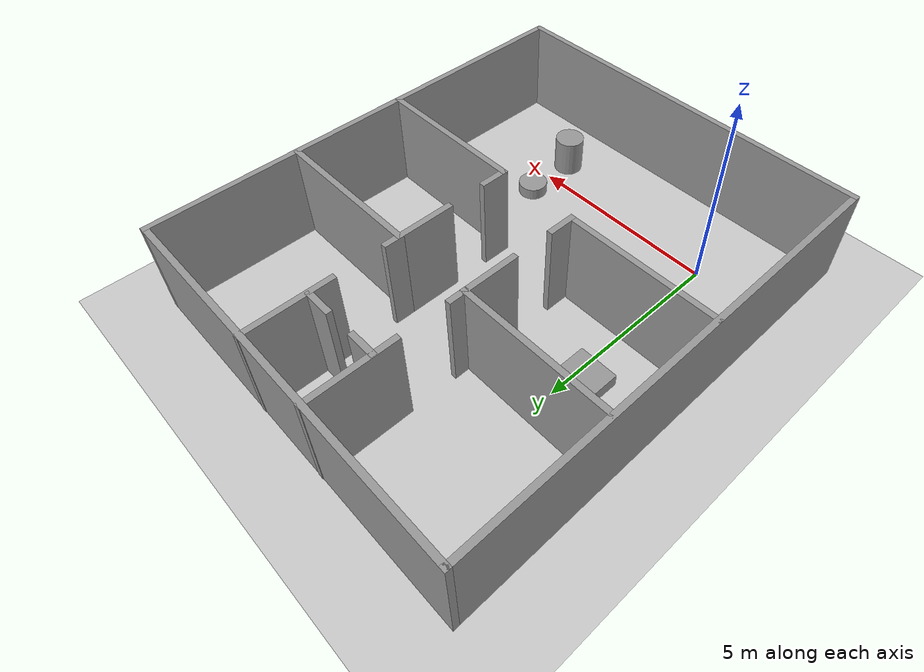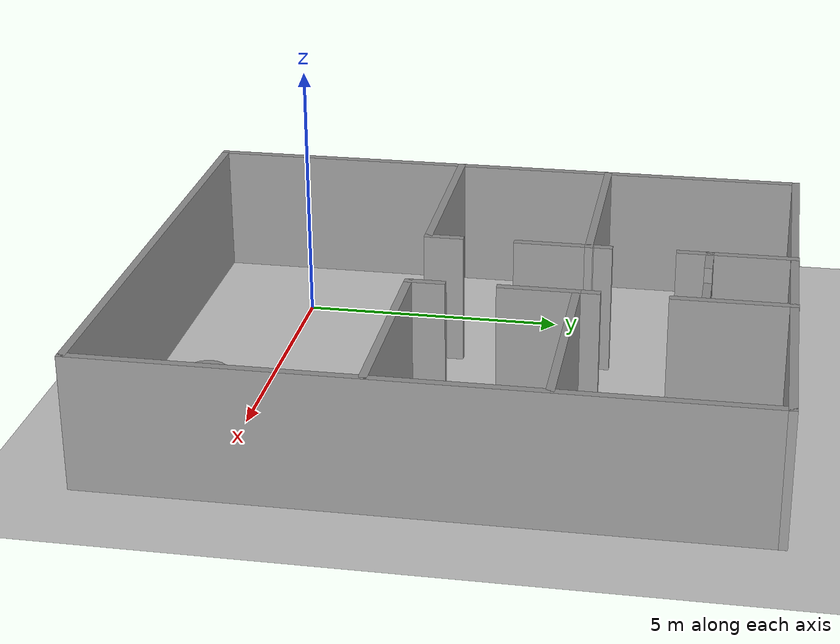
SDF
<sdf version="1.7">
 <world name="default">
  <light name="sun" type="directional">
   <pose>0 0 10 0 -0 0</pose>
   <diffuse>0.8 0.8 0.8 1</diffuse>
   <specular>0.2 0.2 0.2 1</specular>
   <attenuation>
    <range>1000</range>
    <constant>0.9</constant>
    <linear>0.01</linear>
    <quadratic>0.001</quadratic>
   </attenuation>
   <direction>-0.5 0.1 -0.9</direction>
   <spot><inner_angle>0</inner_angle><outer_angle>0</outer_angle><falloff>0</falloff></spot>
  </light>
  <model name="ground_plane">
   <static>1</static>
   <link name="link">
    <collision name="collision">
     <geometry><plane><normal>0 0 1</normal><size>100 100</size></plane></geometry>
     <surface><friction><ode><mu>100</mu><mu2>50</mu2></ode></friction></surface>
    </collision>
    <visual name="visual">
     <cast_shadows>0</cast_shadows>
     <geometry><plane><normal>0 0 1</normal><size>100 100</size></plane></geometry>
     <material>
      <script><uri>file://media/materials/scripts/gazebo.material</uri><name>Gazebo/Grey</name></script>
     </material>
    </visual>
   </link>
  </model>
  <gravity>0 0 -9.8</gravity>
  <magnetic_field>6e-06 2.3e-05 -4.2e-05</magnetic_field>
  <atmosphere type="adiabatic"/>
  <physics type="ode">
   <max_step_size>0.001</max_step_size>
   <real_time_factor>1</real_time_factor>
   <real_time_update_rate>1000</real_time_update_rate>
  </physics>
  <scene><ambient>0.4 0.4 0.4 1</ambient><background>0.7 0.7 0.7 1</background><shadows>1</shadows></scene>
  <audio><device>default</device></audio>
  <spherical_coordinates>
   <surface_model>EARTH_WGS84</surface_model>
   <latitude_deg>0</latitude_deg>
   <longitude_deg>0</longitude_deg>
   <elevation>0</elevation>
   <heading_deg>0</heading_deg>
  </spherical_coordinates>
  <model name="Untitled">
   <pose>4.12571 3.66792 0 0 -0 0.003554</pose>
   <link name="Wall_0">
    <collision name="Wall_0_Collision">
     <geometry><box><size>10 0.15 2.5</size></box></geometry>
     <pose>0 0 1.25 0 -0 0</pose>
    </collision>
    <visual name="Wall_0_Visual">
     <pose>0 0 1.25 0 -0 0</pose>
     <geometry><box><size>10 0.15 2.5</size></box></geometry>
     <material>
      <script><uri>file://media/materials/scripts/gazebo.material</uri><name>Gazebo/Grey</name></script>
      <ambient>1 1 1 1</ambient>
     </material>
     <meta><layer>0</layer></meta>
    </visual>
    <pose>-1.3075 -5.93156 0 0 -0 3.3e-05</pose>
   </link>
   <link name="Wall_14">
    <collision name="Wall_14_Collision">
     <geometry><box><size>4 0.15 2.5</size></box></geometry>
     <pose>0 0 1.25 0 -0 0</pose>
    </collision>
    <visual name="Wall_14_Visual">
     <pose>0 0 1.25 0 -0 0</pose>
     <geometry><box><size>4 0.15 2.5</size></box></geometry>
     <material>
      <script><uri>file://media/materials/scripts/gazebo.material</uri><name>Gazebo/Grey</name></script>
      <ambient>1 1 1 1</ambient>
     </material>
     <meta><layer>0</layer></meta>
    </visual>
    <pose>1.65589 2.13135 0 0 -0 3.14159</pose>
   </link>
   <link name="Wall_17">
    <collision name="Wall_17_Collision">
     <geometry><box><size>4.00005 0.15 2.5</size></box></geometry>
     <pose>0 0 1.25 0 -0 0</pose>
    </collision>
    <visual name="Wall_17_Visual">
     <pose>0 0 1.25 0 -0 0</pose>
     <geometry><box><size>4.00005 0.15 2.5</size></box></geometry>
     <material>
      <script><uri>file://media/materials/scripts/gazebo.material</uri><name>Gazebo/Grey</name></script>
      <ambient>1 1 1 1</ambient>
     </material>
     <meta><layer>0</layer></meta>
    </visual>
    <pose>-4.27584 2.13172 0 0 -0 0</pose>
   </link>
   <link name="Wall_28">
    <collision name="Wall_28_Collision">
     <geometry><box><size>2.25 0.15 2.5</size></box></geometry>
     <pose>0 0 1.25 0 -0 0</pose>
    </collision>
    <visual name="Wall_28_Visual">
     <pose>0 0 1.25 0 -0 0</pose>
     <geometry><box><size>2.25 0.15 2.5</size></box></geometry>
     <material>
      <script><uri>file://media/materials/scripts/gazebo.material</uri><name>Gazebo/Grey</name></script>
      <ambient>1 1 1 1</ambient>
     </material>
     <meta><layer>0</layer></meta>
    </visual>
    <pose>-2.35084 4.88172 0 0 -0 1.5708</pose>
   </link>
   <link name="Wall_31">
    <collision name="Wall_31_Collision">
     <geometry><box><size>2.25 0.15 2.5</size></box></geometry>
     <pose>0 0 1.25 0 -0 0</pose>
    </collision>
    <visual name="Wall_31_Visual">
     <pose>0 0 1.25 0 -0 0</pose>
     <geometry><box><size>2.25 0.15 2.5</size></box></geometry>
     <material>
      <script><uri>file://media/materials/scripts/gazebo.material</uri><name>Gazebo/Grey</name></script>
      <ambient>1 1 1 1</ambient>
     </material>
     <meta><layer>0</layer></meta>
    </visual>
    <pose>-0.269114 4.88135 0 0 -0 1.5708</pose>
   </link>
   <link name="Wall_33">
    <collision name="Wall_33_Collision">
     <geometry><box><size>0.75 0.15 2.5</size></box></geometry>
     <pose>0 0 1.25 0 -0 0</pose>
    </collision>
    <visual name="Wall_33_Visual">
     <pose>0 0 1.25 0 -0 0</pose>
     <geometry><box><size>0.75 0.15 2.5</size></box></geometry>
     <material>
      <script><uri>file://media/materials/scripts/gazebo.material</uri><name>Gazebo/Grey</name></script>
      <ambient>1 1 1 1</ambient>
     </material>
     <meta><layer>0</layer></meta>
    </visual>
    <pose>-2.03024 4.37324 0 0 -0 0</pose>
   </link>
   <link name="Wall_36">
    <collision name="Wall_36_Collision">
     <geometry><box><size>0.75 0.15 2.5</size></box></geometry>
     <pose>0 0 1.25 0 -0 0</pose>
    </collision>
    <visual name="Wall_36_Visual">
     <pose>0 0 1.25 0 -0 0</pose>
     <geometry><box><size>0.75 0.15 2.5</size></box></geometry>
     <material>
      <script><uri>file://media/materials/scripts/gazebo.material</uri><name>Gazebo/Grey</name></script>
      <ambient>1 1 1 1</ambient>
     </material>
     <meta><layer>0</layer></meta>
    </visual>
    <pose>-0.612674 4.39073 0 0 -0 3.14159</pose>
   </link>
   <link name="Wall_4">
    <collision name="Wall_4_Collision">
     <geometry><box><size>12 0.15 2.5</size></box></geometry>
     <pose>0 0 1.25 0 -0 0</pose>
    </collision>
    <visual name="Wall_4_Visual">
     <pose>0 0 1.25 0 -0 0</pose>
     <geometry><box><size>12 0.15 2.5</size></box></geometry>
     <material>
      <script><uri>file://media/materials/scripts/gazebo.material</uri><name>Gazebo/Grey</name></script>
      <ambient>1 1 1 1</ambient>
     </material>
     <meta><layer>0</layer></meta>
    </visual>
    <pose>-6.2325 -0.006559 0 0 -0 1.57077</pose>
   </link>
   <link name="Wall_40">
    <collision name="Wall_40_Collision">
     <geometry><box><size>4 0.15 2.5</size></box></geometry>
     <pose>0 0 1.25 0 -0 0</pose>
    </collision>
    <visual name="Wall_40_Visual">
     <pose>0 0 1.25 0 -0 0</pose>
     <geometry><box><size>4 0.15 2.5</size></box></geometry>
     <material>
      <script><uri>file://media/materials/scripts/gazebo.material</uri><name>Gazebo/Grey</name></script>
      <ambient>1 1 1 1</ambient>
     </material>
     <meta><layer>0</layer></meta>
    </visual>
    <pose>-4.29477 -0.903426 0 0 -0 0</pose>
   </link>
   <link name="Wall_42">
    <collision name="Wall_42_Collision">
     <geometry><box><size>4 0.15 2.5</size></box></geometry>
     <pose>0 0 1.25 0 -0 0</pose>
    </collision>
    <visual name="Wall_42_Visual">
     <pose>0 0 1.25 0 -0 0</pose>
     <geometry><box><size>4 0.15 2.5</size></box></geometry>
     <material>
      <script><uri>file://media/materials/scripts/gazebo.material</uri><name>Gazebo/Grey</name></script>
      <ambient>1 1 1 1</ambient>
     </material>
     <meta><layer>0</layer></meta>
    </visual>
    <pose>1.66772 -0.885502 0 0 -0 3.14159</pose>
   </link>
   <link name="Wall_49">
    <collision name="Wall_49_Collision">
     <geometry><box><size>1.5 0.15 2.5</size></box></geometry>
     <pose>0 0 1.25 0 -0 0</pose>
    </collision>
    <visual name="Wall_49_Visual">
     <pose>0 0 1.25 0 -0 0</pose>
     <geometry><box><size>1.5 0.15 2.5</size></box></geometry>
     <material>
      <script><uri>file://media/materials/scripts/gazebo.material</uri><name>Gazebo/Grey</name></script>
      <ambient>1 1 1 1</ambient>
     </material>
     <meta><layer>0</layer></meta>
    </visual>
    <pose>-2.35084 1.47683 0 0 -0 -1.5708</pose>
   </link>
   <link name="Wall_51">
    <collision name="Wall_51_Collision">
     <geometry><box><size>1.5 0.15 2.5</size></box></geometry>
     <pose>0 0 1.25 0 -0 0</pose>
    </collision>
    <visual name="Wall_51_Visual">
     <pose>0 0 1.25 0 -0 0</pose>
     <geometry><box><size>1.5 0.15 2.5</size></box></geometry>
     <material>
      <script><uri>file://media/materials/scripts/gazebo.material</uri><name>Gazebo/Grey</name></script>
      <ambient>1 1 1 1</ambient>
     </material>
     <meta><layer>0</layer></meta>
    </visual>
    <pose>-0.269114 1.45635 0 0 -0 -1.5708</pose>
   </link>
   <link name="Wall_53">
    <collision name="Wall_53_Collision">
     <geometry><box><size>0.5 0.15 2.5</size></box></geometry>
     <pose>0 0 1.25 0 -0 0</pose>
    </collision>
    <visual name="Wall_53_Visual">
     <pose>0 0 1.25 0 -0 0</pose>
     <geometry><box><size>0.5 0.15 2.5</size></box></geometry>
     <material>
      <script><uri>file://media/materials/scripts/gazebo.material</uri><name>Gazebo/Grey</name></script>
      <ambient>1 1 1 1</ambient>
     </material>
     <meta><layer>0</layer></meta>
    </visual>
    <pose>-2.35084 2.32683 0 0 -0 1.5708</pose>
   </link>
   <link name="Wall_55">
    <collision name="Wall_55_Collision">
     <geometry><box><size>0.5 0.15 2.5</size></box></geometry>
     <pose>0 0 1.25 0 -0 0</pose>
    </collision>
    <visual name="Wall_55_Visual">
     <pose>0 0 1.25 0 -0 0</pose>
     <geometry><box><size>0.5 0.15 2.5</size></box></geometry>
     <material>
      <script><uri>file://media/materials/scripts/gazebo.material</uri><name>Gazebo/Grey</name></script>
      <ambient>1 1 1 1</ambient>
     </material>
     <meta><layer>0</layer></meta>
    </visual>
    <pose>-0.269114 2.30635 0 0 -0 1.5708</pose>
   </link>
   <link name="Wall_57">
    <collision name="Wall_57_Collision">
     <geometry><box><size>0.75 0.15 2.5</size></box></geometry>
     <pose>0 0 1.25 0 -0 0</pose>
    </collision>
    <visual name="Wall_57_Visual">
     <pose>0 0 1.25 0 -0 0</pose>
     <geometry><box><size>0.75 0.15 2.5</size></box></geometry>
     <material>
      <script><uri>file://media/materials/scripts/gazebo.material</uri><name>Gazebo/Grey</name></script>
      <ambient>1 1 1 1</ambient>
     </material>
     <meta><layer>0</layer></meta>
    </visual>
    <pose>-2.36977 -0.603426 0 0 -0 1.5708</pose>
   </link>
   <link name="Wall_59">
    <collision name="Wall_59_Collision">
     <geometry><box><size>0.75 0.15 2.5</size></box></geometry>
     <pose>0 0 1.25 0 -0 0</pose>
    </collision>
    <visual name="Wall_59_Visual">
     <pose>0 0 1.25 0 -0 0</pose>
     <geometry><box><size>0.75 0.15 2.5</size></box></geometry>
     <material>
      <script><uri>file://media/materials/scripts/gazebo.material</uri><name>Gazebo/Grey</name></script>
      <ambient>1 1 1 1</ambient>
     </material>
     <meta><layer>0</layer></meta>
    </visual>
    <pose>-0.257281 -0.585502 0 0 -0 1.5708</pose>
   </link>
   <link name="Wall_6">
    <collision name="Wall_6_Collision">
     <geometry><box><size>12 0.15 2.5</size></box></geometry>
     <pose>0 0 1.25 0 -0 0</pose>
    </collision>
    <visual name="Wall_6_Visual">
     <pose>0 0 1.25 0 -0 0</pose>
     <geometry><box><size>12 0.15 2.5</size></box></geometry>
     <material>
      <script><uri>file://media/materials/scripts/gazebo.material</uri><name>Gazebo/Grey</name></script>
      <ambient>1 1 1 1</ambient>
     </material>
     <meta><layer>0</layer></meta>
    </visual>
    <pose>3.61766 -0.006398 0 0 -0 1.5708</pose>
   </link>
   <link name="Wall_9">
    <collision name="Wall_9_Collision">
     <geometry><box><size>10.0003 0.15 2.5</size></box></geometry>
     <pose>0 0 1.25 0 -0 0</pose>
    </collision>
    <visual name="Wall_9_Visual">
     <pose>0 0 1.25 0 -0 0</pose>
     <geometry><box><size>10.0003 0.15 2.5</size></box></geometry>
     <material>
      <script><uri>file://media/materials/scripts/gazebo.material</uri><name>Gazebo/Grey</name></script>
      <ambient>1 1 1 1</ambient>
     </material>
     <meta><layer>0</layer></meta>
    </visual>
    <pose>-1.30734 5.9186 0 0 -0 0</pose>
   </link>
   <static>1</static>
  </model>
  <model name="unit_cylinder">
   <pose>4.96851 -0.700253 0.491748 -0 -0 -0</pose>
   <link name="link">
    <inertial>
     <mass>1</mass>
     <inertia><ixx>0.145833</ixx><ixy>0</ixy><ixz>0</ixz><iyy>0.145833</iyy><iyz>0</iyz><izz>0.125</izz></inertia>
    </inertial>
    <collision name="collision">
     <geometry><cylinder><radius>0.373748</radius><length>0.983494</length></cylinder></geometry>
    </collision>
    <visual name="visual">
     <geometry><cylinder><radius>0.373748</radius><length>0.983494</length></cylinder></geometry>
     <material>
      <script><name>Gazebo/Grey</name><uri>file://media/materials/scripts/gazebo.material</uri></script>
     </material>
    </visual>
   </link>
  </model>
  <model name="unit_cylinder_clone">
   <pose>4.91793 0.727272 0.154068 -0 -0 -0</pose>
   <link name="link">
    <inertial>
     <mass>1</mass>
     <inertia><ixx>0.145833</ixx><ixy>0</ixy><ixz>0</ixz><iyy>0.145833</iyy><iyz>0</iyz><izz>0.125</izz></inertia>
    </inertial>
    <collision name="collision">
     <geometry><cylinder><radius>0.373748</radius><length>0.308137</length></cylinder></geometry>
    </collision>
    <visual name="visual">
     <geometry><cylinder><radius>0.373748</radius><length>0.308137</length></cylinder></geometry>
     <material>
      <script><name>Gazebo/Grey</name><uri>file://media/materials/scripts/gazebo.material</uri></script>
     </material>
    </visual>
   </link>
  </model>
  <model name="unit_box">
   <pose>-0.271899 4.76398 0.168664 0 -0 0</pose>
   <link name="link">
    <inertial>
     <mass>1</mass>
     <inertia>
      <ixx>0.166667</ixx>
      <ixy>0</ixy>
      <ixz>0</ixz>
      <iyy>0.166667</iyy>
      <iyz>0</iyz>
      <izz>0.166667</izz>
     </inertia>
    </inertial>
    <collision name="collision"><geometry><box><size>1 1.83631 0.337328</size></box></geometry></collision>
    <visual name="visual">
     <geometry><box><size>1 1.83631 0.337328</size></box></geometry>
     <material>
      <script><name>Gazebo/Grey</name><uri>file://media/materials/scripts/gazebo.material</uri></script>
     </material>
    </visual>
   </link>
  </model>
  <model name="unit_cylinder_0">
   <pose>-1.50344 4.46143 0.102555 0 -0 0</pose>
   <link name="link">
    <inertial>
     <mass>1</mass>
     <inertia><ixx>0.145833</ixx><ixy>0</ixy><ixz>0</ixz><iyy>0.145833</iyy><iyz>0</iyz><izz>0.125</izz></inertia>
    </inertial>
    <collision name="collision">
     <geometry><cylinder><radius>0.0835293</radius><length>0.20513</length></cylinder></geometry>
    </collision>
    <visual name="visual">
     <geometry><cylinder><radius>0.0835293</radius><length>0.20513</length></cylinder></geometry>
     <material>
      <script><name>Gazebo/Grey</name><uri>file://media/materials/scripts/gazebo.material</uri></script>
     </material>
    </visual>
   </link>
  </model>
 </world>
</sdf>
